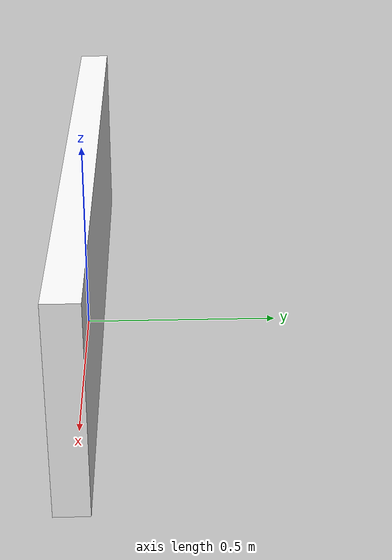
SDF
<?xml version="1.0" ?>
<sdf version="1.6">
<model name="rack_sign_A2">
  <static>true</static>
  <link name="link">
<visual name="panel">
<pose>0 0 0.25 0 0 0</pose>
<geometry><box><size>1.6 0.08 0.5</size></box></geometry>
<material><ambient>1 1 1 1</ambient>
<diffuse>1 1 1 1</diffuse>
<specular>0.1 0.1 0.1 1</specular>
<pbr><metal><albedo_map>textures/A2.png</albedo_map><roughness>0.55</roughness><metalness>0.1</metalness></metal></pbr></material>
</visual>
<visual name="pole">
<pose>0 -0.0 0.04 0 0 0</pose>
<geometry><box><size>0.06 0.06 0.08</size></box></geometry>
<material><ambient>0.1 0.1 0.12 1</ambient>
<diffuse>0.25 0.25 0.3 1</diffuse>
<specular>0.1 0.1 0.1 1</specular></material>
</visual>
  </link>
</model>
</sdf>
